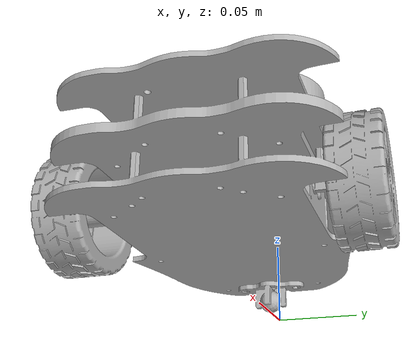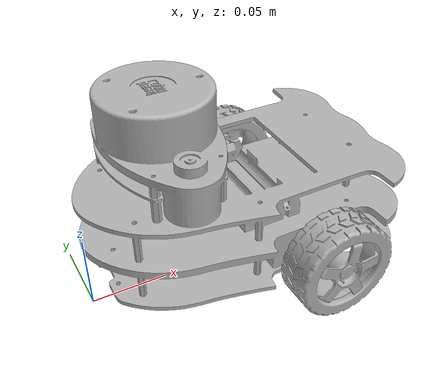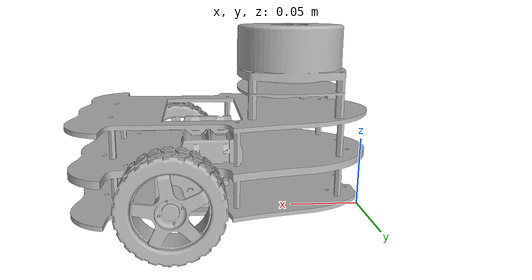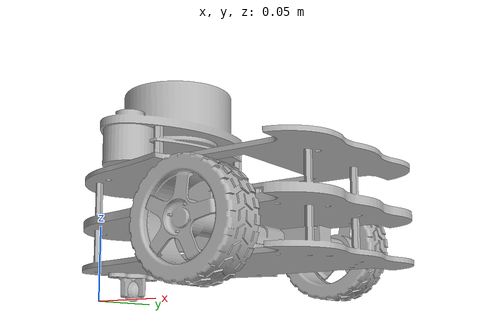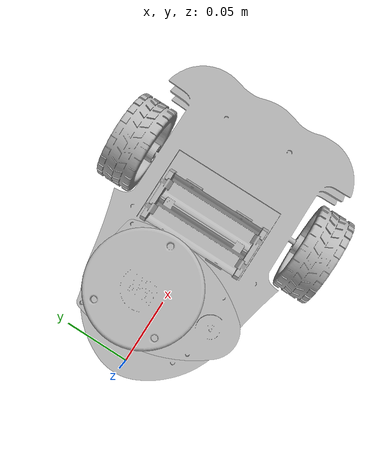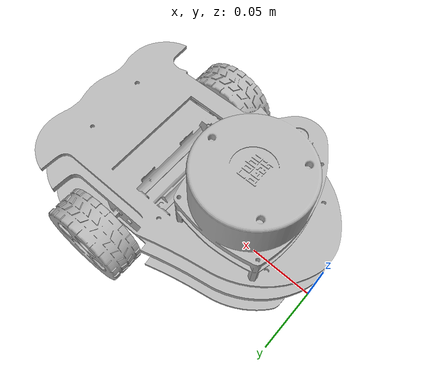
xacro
<?xml version="1.0" ?>
<robot name="alphabot_base" xmlns:xacro="http://www.ros.org/wiki/xacro">

<xacro:include filename="$(find alphabot_base_description)/urdf/materials.xacro" />
<xacro:include filename="$(find alphabot_base_description)/urdf/alphabot_base.trans" />
<xacro:include filename="$(find alphabot_base_description)/urdf/alphabot_base.gazebo" />
<link name="base_link">
  <inertial>
    <origin xyz="0.1088047853412877 0.0024273001725789323 0.04130382014186731" rpy="0 0 0"/>
    <mass value="2.0312240853373598"/>
    <inertia ixx="0.002725" iyy="0.0058" izz="0.007112" ixy="-3e-05" iyz="1e-06" ixz="3.9e-05"/>
  </inertial>
  <visual>
    <origin xyz="0 0 0" rpy="0 0 0"/>
    <geometry>
      <mesh filename="package://alphabot_base_description/meshes/base_link.stl" scale="0.001 0.001 0.001"/>
    </geometry>
    <material name="silver"/>
  </visual>
  <collision>
    <origin xyz="0 0 0" rpy="0 0 0"/>
    <geometry>
      <mesh filename="package://alphabot_base_description/meshes/base_link.stl" scale="0.001 0.001 0.001"/>
    </geometry>
  </collision>
</link>

<link name="tyre_left_2_1">
  <inertial>
    <origin xyz="-1.0294736729754561e-08 -0.01589026768426134 5.673710496145734e-07" rpy="0 0 0"/>
    <mass value="0.23341302374485776"/>
    <inertia ixx="9.6e-05" iyy="0.00016" izz="9.6e-05" ixy="-0.0" iyz="0.0" ixz="0.0"/>
  </inertial>
  <visual>
    <origin xyz="-0.13535 0.055077 -0.031954" rpy="0 0 0"/>
    <geometry>
      <mesh filename="package://alphabot_base_description/meshes/tyre_left_2_1.stl" scale="0.001 0.001 0.001"/>
    </geometry>
    <material name="silver"/>
  </visual>
  <collision>
    <origin xyz="-0.13535 0.055077 -0.031954" rpy="0 0 0"/>
    <geometry>
      <mesh filename="package://alphabot_base_description/meshes/tyre_left_2_1.stl" scale="0.001 0.001 0.001"/>
    </geometry>
  </collision>
</link>

<link name="tyre_right_2_1">
  <inertial>
    <origin xyz="-6.4190364690297486e-09 0.01589026924972143 5.804581818188992e-07" rpy="0 0 0"/>
    <mass value="0.23341258097957548"/>
    <inertia ixx="9.6e-05" iyy="0.00016" izz="9.6e-05" ixy="0.0" iyz="-0.0" ixz="0.0"/>
  </inertial>
  <visual>
    <origin xyz="-0.13535 -0.059077 -0.031954" rpy="0 0 0"/>
    <geometry>
      <mesh filename="package://alphabot_base_description/meshes/tyre_right_2_1.stl" scale="0.001 0.001 0.001"/>
    </geometry>
    <material name="silver"/>
  </visual>
  <collision>
    <origin xyz="-0.13535 -0.059077 -0.031954" rpy="0 0 0"/>
    <geometry>
      <mesh filename="package://alphabot_base_description/meshes/tyre_right_2_1.stl" scale="0.001 0.001 0.001"/>
    </geometry>
  </collision>
</link>

<link name="rplidar_1">
  <inertial>
    <origin xyz="0.027907600567433848 -0.034766238863451364 0.03526812773284048" rpy="0 0 0"/>
    <mass value="1.3392997077576572"/>
    <inertia ixx="0.000967" iyy="0.000619" izz="0.001105" ixy="1e-06" iyz="-0.000159" ixz="-3e-06"/>
  </inertial>
  <visual>
    <origin xyz="-0.028925 -0.03911 -0.07484" rpy="0 0 0"/>
    <geometry>
      <mesh filename="package://alphabot_base_description/meshes/rplidar_1.stl" scale="0.001 0.001 0.001"/>
    </geometry>
    <material name="silver"/>
  </visual>
  <collision>
    <origin xyz="-0.028925 -0.03911 -0.07484" rpy="0 0 0"/>
    <geometry>
      <mesh filename="package://alphabot_base_description/meshes/rplidar_1.stl" scale="0.001 0.001 0.001"/>
    </geometry>
  </collision>
</link>

<joint name="Rev32" type="continuous">
  <origin xyz="0.13535 -0.055077 0.031954" rpy="0 0 0"/>
  <parent link="base_link"/>
  <child link="tyre_left_2_1"/>
  <axis xyz="0.0 1.0 -0.0"/>
</joint>

<joint name="Rev33" type="continuous">
  <origin xyz="0.13535 0.059077 0.031954" rpy="0 0 0"/>
  <parent link="base_link"/>
  <child link="tyre_right_2_1"/>
  <axis xyz="-0.0 1.0 0.0"/>
</joint>

<joint name="Rigid34" type="fixed">
  <origin xyz="0.028925 0.03911 0.07484" rpy="0 0 0"/>
  <parent link="base_link"/>
  <child link="rplidar_1"/>
</joint>

</robot>

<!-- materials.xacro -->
<robot name="alphabot_base" xmlns:xacro="http://www.ros.org/wiki/xacro" >

<material name="silver">
  <color rgba="0.700 0.700 0.700 1.000"/>
</material>

</robot>

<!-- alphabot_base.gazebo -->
<robot name="alphabot_base" xmlns:xacro="http://www.ros.org/wiki/xacro" >

<xacro:property name="body_color" value="Gazebo/Silver" />

<gazebo>
  <plugin name="control" filename="libgazebo_ros_control.so"/>
</gazebo>
<gazebo reference="base_link">
  <material>${body_color}</material>
  <mu1>0.2</mu1>
  <mu2>0.2</mu2>
  <selfCollide>true</selfCollide>
  <gravity>true</gravity>
</gazebo>

<gazebo reference="tyre_left_2_1">
  <material>${body_color}</material>
  <mu1>0.2</mu1>
  <mu2>0.2</mu2>
  <selfCollide>true</selfCollide>
</gazebo>

<gazebo reference="tyre_right_2_1">
  <material>${body_color}</material>
  <mu1>0.2</mu1>
  <mu2>0.2</mu2>
  <selfCollide>true</selfCollide>
</gazebo>

<gazebo reference="rplidar_1">
  <material>${body_color}</material>
  <mu1>0.2</mu1>
  <mu2>0.2</mu2>
  <selfCollide>true</selfCollide>
</gazebo>

</robot>
